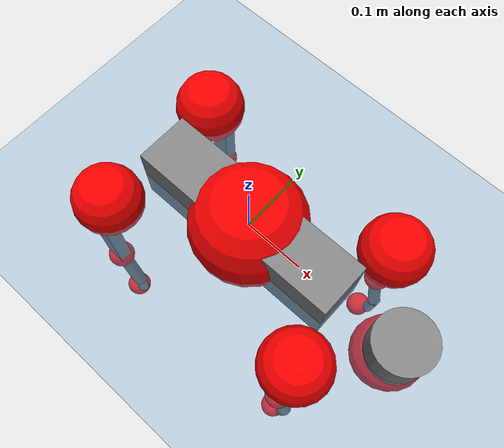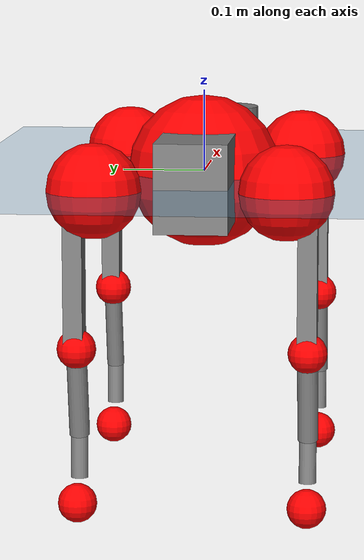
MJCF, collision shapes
<mujoco model="go2">
  <compiler angle="radian" assetdir="assets" balanceinertia="true" inertiafromgeom="false"/>

  <option timestep="0.005" density="1.2" viscosity="2e-05"/>

  <size nkey="1"/>

  <visual>
    <quality shadowsize="8192"/>
    <map shadowclip="0.5"/>
  </visual>

  <default>
    <default class="/">
      <geom contype="0" conaffinity="0" group="1" solref="-1000 -80"/>
      <site size="0.01 0.005 0.005" group="5"/>
      <general forcelimited="true" biastype="affine" gainprm="20" biasprm="0 -20 -0.5"/>
      <default class="go2">
        <joint armature="0.01" damping="0.01" frictionloss="0.2"/>
        <geom condim="1" margin="0.001"/>
        <default class="visual">
          <geom type="mesh" group="2"/>
        </default>
        <default class="collision">
          <geom group="3"/>
          <default class="foot">
            <geom size="0.022 0 0" condim="6" priority="1" friction="0.8 0.02 0.01" solimp="0.015 1 0.022"/>
          </default>
        </default>
        <default class="reward_collision_sphere">
          <geom group="5" rgba="1 0 0 1"/>
        </default>
      </default>
    </default>
  </default>

  <asset>
    <texture type="skybox" colorspace="auto" name="//unnamed_texture_0" builtin="gradient" rgb1="0.95 0.95 0.95" rgb2="0.95 0.95 0.95" width="100" height="600"/>
    <texture type="2d" colorspace="auto" name="texplane" builtin="checker" rgb1="0.345 0.575 0.748" rgb2="0.345 0.575 0.748" markrgb="1 1 1" width="512" height="512"/>
    <material name="MatPlane" class="/" texture="texplane" texuniform="true" texrepeat="2 2" specular="0.9"/>
    <material name="metal" class="/" rgba="0.9 0.95 0.95 1"/>
    <material name="black" class="/" rgba="0 0 0 1"/>
    <material name="white" class="/"/>
    <material name="gray" class="/" rgba="0.671705 0.692426 0.77427 1"/>
    <mesh name="base_0" class="/" file="base_0.obj"/>
    <mesh name="base_1" class="/" file="base_1.obj"/>
    <mesh name="base_2" class="/" file="base_2.obj"/>
    <mesh name="base_3" class="/" file="base_3.obj"/>
    <mesh name="base_4" class="/" file="base_4.obj"/>
    <mesh name="hip_0" class="/" file="hip_0.obj"/>
    <mesh name="hip_1" class="/" file="hip_1.obj"/>
    <mesh name="thigh_0" class="/" file="thigh_0.obj"/>
    <mesh name="thigh_1" class="/" file="thigh_1.obj"/>
    <mesh name="thigh_mirror_0" class="/" file="thigh_mirror_0.obj"/>
    <mesh name="thigh_mirror_1" class="/" file="thigh_mirror_1.obj"/>
    <mesh name="calf_0" class="/" file="calf_0.obj"/>
    <mesh name="calf_1" class="/" file="calf_1.obj"/>
    <mesh name="calf_mirror_0" class="/" file="calf_mirror_0.obj"/>
    <mesh name="calf_mirror_1" class="/" file="calf_mirror_1.obj"/>
    <mesh name="foot" class="/" file="foot.obj"/>
  </asset>

  <worldbody>
    <geom name="floor" class="/" size="100 100 0.125" type="plane" group="0" material="MatPlane"/>
    <light name="toplight_shadow" class="/" pos="0 0 5" dir="0.0990148 0.0990148 -0.990148" type="directional" ambient="0.04 0.04 0.04" diffuse="0.55 0.55 0.55" specular="0.12 0.12 0.12"/>
    <light name="toplight_fill" class="/" pos="0 0 5" dir="0.0990148 0.0990148 -0.990148" type="directional" castshadow="false" ambient="0.04 0.04 0.04" diffuse="0.3 0.3 0.3" specular="0.08 0.08 0.08"/>
    <body name="trunk" childclass="go2" pos="3.33836e-06 0.000162169 2.35303e-05" quat="1 -7.98156e-06 3.98334e-06 3.22683e-06">
      <inertial pos="0.0199353 -0.000180628 -0.00486126" quat="-0.00452236 0.709689 -0.00677977 0.704468" mass="5.73426" diaginertia="0.0933854 0.0832095 0.0127026"/>
      <joint name="//unnamed_joint_0" type="free" armature="0" damping="0" frictionloss="0"/>
      <geom name="//unnamed_geom_1" class="visual" material="black" mesh="base_0"/>
      <geom name="//unnamed_geom_2" class="visual" material="black" mesh="base_1"/>
      <geom name="//unnamed_geom_3" class="visual" material="black" mesh="base_2"/>
      <geom name="//unnamed_geom_4" class="visual" material="white" mesh="base_3"/>
      <geom name="//unnamed_geom_5" class="visual" material="gray" mesh="base_4"/>
      <geom name="trunk_1" class="collision" size="0.176373 0.0438354 0.0534464" type="box"/>
      <geom name="trunk_2" class="collision" size="0.0468828 0.0421945" pos="0.276762 0 0.00877234" type="cylinder"/>
      <geom name="trunk_3" class="collision" size="0.0440699" pos="0.284531 0 -0.0526341"/>
      <geom name="//unnamed_geom_9" class="reward_collision_sphere" size="0.0937657"/>
      <geom name="//unnamed_geom_10" class="reward_collision_sphere" size="0.0562594" pos="0.271907 0 -0.0394755"/>
      <site name="imu" pos="-0.0263058 -0.00466657 0.037968" size="0.00937657"/>
      <camera name="track" pos="0 -1.92928 0" quat="0.707107 0.707107 0 0" mode="trackcom"/>
      <camera name="ego_camera" pos="0.302982 0 0.0394755" quat="-0.5 -0.5 0.5 0.5"/>
      <body name="FL_hip" pos="0.186489 0.0466448 0.00243966" quat="1 -2.93574e-05 7.48731e-07 -6.39335e-05">
        <inertial pos="-0.00560857 0.00202878 -0.00100719" quat="0.496652 0.499138 0.50626 0.497895" mass="0.561259" diaginertia="0.000762852 0.000502322 0.000251115"/>
        <joint name="FL_hip_joint" pos="0 0 0" axis="0.999983 -0.00451722 -0.00381184" stiffness="0.00759886" range="-1.01558 1.03036" armature="0.0095483" damping="0.00318026" frictionloss="0.181401"/>
        <geom name="//unnamed_geom_11" class="visual" material="metal" mesh="hip_0"/>
        <geom name="//unnamed_geom_12" class="visual" material="gray" mesh="hip_1"/>
        <geom name="//unnamed_geom_13" class="collision" size="0.0431322 0.0187531" pos="0 0.0771713 0" quat="0.707107 0.707107 0 0" type="cylinder"/>
        <geom name="//unnamed_geom_14" class="reward_collision_sphere" size="0.0562594" pos="0 0.0675249 0"/>
        <body name="FL_thigh" pos="-0.0012989 0.0934119 0.00189153" quat="1 0.000287926 -3.66359e-05 -8.89205e-05">
          <inertial pos="-0.00447959 -0.022171 -0.0280144" quat="0.829294 0.0869254 -0.019951 0.551649" mass="0.949681" diaginertia="0.0051246 0.00486628 0.000455664"/>
          <joint name="FL_thigh_joint" pos="0 0 0" axis="0.00242691 0.999987 0.00452666" stiffness="0.00488011" range="-1.58803 3.51261" armature="0.00941992" damping="0.0108988" frictionloss="0.182143"/>
          <geom name="//unnamed_geom_15" class="visual" material="metal" mesh="thigh_0"/>
          <geom name="//unnamed_geom_16" class="visual" material="gray" mesh="thigh_1"/>
          <geom name="//unnamed_geom_17" class="collision" size="0.0998604 0.0114863 0.0159402" pos="0 0 -0.0934254" quat="0.707107 0 0.707107 0" type="box"/>
          <body name="FL_calf" pos="-0.000928673 -0.00178031 -0.186304" quat="1 0.000338931 -0.00027497 -0.00018921">
            <inertial pos="0.00551142 -0.000498595 -0.125064" quat="0.710731 0.00165363 -0.00435374 0.703449" mass="0.198221" diaginertia="0.0012918 0.00124013 2.7206e-05"/>
            <joint name="FL_calf_joint" pos="0 0 0" axis="-0.00657288 0.999969 -0.0042896" stiffness="0.00235186" range="-2.75128 -0.833082" armature="0.00980043" damping="0.00034776" frictionloss="0.187173"/>
            <geom name="//unnamed_geom_18" class="visual" material="gray" mesh="calf_0"/>
            <geom name="//unnamed_geom_19" class="visual" material="black" mesh="calf_1"/>
            <geom name="FL_calf0" class="collision" size="0.0112519 0.0562594" pos="0.00776876 0 -0.0526341" quat="0.994493 0 -0.104807 0" type="cylinder"/>
            <geom name="//unnamed_geom_21" class="collision" size="0.0103142 0.0304738" pos="0.0194219 0 -0.129831" quat="0.999688 0 0.0249974 0" type="cylinder"/>
            <geom name="//unnamed_geom_22" class="visual" pos="0 0 -0.186851" quat="1 0 0 0" material="black" mesh="foot"/>
            <geom name="FL_foot" class="foot" size="0.0184116" pos="-0.00194219 0 -0.186851"/>
            <geom name="//unnamed_geom_24" class="reward_collision_sphere" size="0.0234414"/>
            <geom name="//unnamed_geom_25" class="reward_collision_sphere" size="0.0234414" pos="-0.00194219 0 -0.186851"/>
            <site name="FL_foot" class="foot" pos="-0.00194219 0 -0.186851" size="0.00937657"/>
          </body>
        </body>
      </body>
      <body name="FR_hip" pos="0.188622 -0.0436094 -0.000491315" quat="1 -8.94274e-05 0.000121999 0.000130103">
        <inertial pos="-0.00488703 -0.00121644 -0.00056801" quat="0.497078 0.505633 0.499935 0.497307" mass="0.555191" diaginertia="0.000764874 0.000487275 0.000249143"/>
        <joint name="FR_hip_joint" pos="0 0 0" axis="0.999988 0.00407249 -0.00285432" stiffness="0.00687651" range="-1.04975 1.05413" armature="0.00928858" damping="0.0177266" frictionloss="0.183006"/>
        <geom name="//unnamed_geom_26" class="visual" pos="0 7.61449e-10 3.26601e-08" quat="4.63268e-05 1 0 0" material="metal" mesh="hip_0"/>
        <geom name="//unnamed_geom_27" class="visual" pos="0 1.2344e-09 -8.0781e-08" quat="4.63268e-05 1 0 0" material="gray" mesh="hip_1"/>
        <geom name="//unnamed_geom_28" class="collision" size="0.0431322 0.0187531" pos="0 -0.0771713 0" quat="0.707107 0.707107 0 0" type="cylinder"/>
        <geom name="//unnamed_geom_29" class="reward_collision_sphere" size="0.0562594" pos="0 -0.0675249 0"/>
        <body name="FR_thigh" pos="0.00182468 -0.0906577 0.00130832" quat="1 -0.000186576 -0.000325717 -0.000322872">
          <inertial pos="-0.0033064 0.0202253 -0.0283551" quat="0.55483 -0.021559 0.0831923 0.827513" mass="0.945971" diaginertia="0.00514446 0.00488804 0.000461338"/>
          <joint name="FR_thigh_joint" pos="0 0 0" axis="-0.000629103 -1 0.000437933" range="-3.51432 1.56894" armature="0.00945955" damping="0.0144381" frictionloss="0.187525"/>
          <geom name="//unnamed_geom_30" class="visual" material="metal" mesh="thigh_mirror_0"/>
          <geom name="//unnamed_geom_31" class="visual" material="gray" mesh="thigh_mirror_1"/>
          <geom name="//unnamed_geom_32" class="collision" size="0.0998604 0.0114863 0.0159402" pos="0 0 -0.0934254" quat="0.707107 0 0.707107 0" type="box"/>
          <body name="FR_calf" pos="-0.000920035 8.70287e-05 -0.185984" quat="1 -0.000169697 7.73802e-05 -0.000119857">
            <inertial pos="0.00521122 0.00063401 -0.125022" quat="0.701495 -0.00309804 0.00434202 0.712654" mass="0.199126" diaginertia="0.00129379 0.00122126 2.75396e-05"/>
            <joint name="FR_calf_joint" pos="0 0 0" axis="-0.00776003 -0.999969 -0.00109327" stiffness="0.00222702" range="0.846541 2.71371" armature="0.00981629" damping="0.0153392" frictionloss="0.184372"/>
            <geom name="//unnamed_geom_33" class="visual" material="gray" mesh="calf_mirror_0"/>
            <geom name="//unnamed_geom_34" class="visual" material="black" mesh="calf_mirror_1"/>
            <geom name="FR_calf0" class="collision" size="0.0121895 0.0562594" pos="0.00971095 0 -0.0526341" quat="0.995004 0 -0.0998334 0" type="cylinder"/>
            <geom name="//unnamed_geom_36" class="collision" size="0.0103142 0.0304738" pos="0.0194219 0 -0.129831" quat="0.999688 0 0.0249974 0" type="cylinder"/>
            <geom name="//unnamed_geom_37" class="visual" pos="0 0 -0.186851" quat="1 0 0 0" material="black" mesh="foot"/>
            <geom name="FR_foot" class="foot" size="0.0221942" pos="-0.00194219 0 -0.186851"/>
            <geom name="//unnamed_geom_39" class="reward_collision_sphere" size="0.0234414"/>
            <geom name="//unnamed_geom_40" class="reward_collision_sphere" size="0.0234414" pos="-0.00194219 0 -0.186851"/>
            <site name="FR_foot" class="foot" pos="-0.00194219 0 -0.186851" size="0.00937657"/>
          </body>
        </body>
      </body>
      <body name="RL_hip" pos="-0.188193 0.0444574 -0.000864796" quat="1 1.22564e-05 -9.2678e-06 -0.000121901">
        <inertial pos="0.00507101 0.00218427 -0.000790046" quat="0.505455 0.497946 0.497016 0.499539" mass="0.552681" diaginertia="0.000754382 0.00049255 0.000246446"/>
        <joint name="RL_hip_joint" pos="0 0 0" axis="-0.999875 -0.0150449 -0.00494796" stiffness="0.00330521" range="-1.0431 1.06422" armature="0.00931957" damping="0.0122968" frictionloss="0.191949"/>
        <geom name="//unnamed_geom_41" class="visual" pos="-8.17677e-10 0 -1.60283e-07" quat="4.63268e-05 0 1 0" material="metal" mesh="hip_0"/>
        <geom name="//unnamed_geom_42" class="visual" pos="-1.32555e-09 0 -1.42149e-07" quat="4.63268e-05 0 1 0" material="gray" mesh="hip_1"/>
        <geom name="//unnamed_geom_43" class="collision" size="0.0431322 0.0187531" pos="0 0.0771713 0" quat="0.707107 0.707107 0 0" type="cylinder"/>
        <geom name="//unnamed_geom_44" class="reward_collision_sphere" size="0.0562594" pos="0 0.0675249 0"/>
        <body name="RL_thigh" pos="0.00058654 0.0916036 -0.00126085" quat="1 0.000159156 8.81906e-07 0.000183836">
          <inertial pos="-0.00376435 -0.0215043 -0.0296943" quat="0.828527 0.0884209 -0.0177211 0.55264" mass="0.961351" diaginertia="0.00509332 0.00479541 0.000452986"/>
          <joint name="RL_thigh_joint" pos="0 0 0" axis="0.00597784 0.999982 0.0007893" range="-0.518759 4.52085" armature="0.00964936" damping="0.00729365" frictionloss="0.187337"/>
          <geom name="//unnamed_geom_45" class="visual" material="metal" mesh="thigh_0"/>
          <geom name="//unnamed_geom_46" class="visual" material="gray" mesh="thigh_1"/>
          <geom name="//unnamed_geom_47" class="collision" size="0.0998604 0.0114863 0.0159402" pos="0 0 -0.0934254" quat="0.707107 0 0.707107 0" type="box"/>
          <body name="RL_calf" pos="0.000623226 -0.00216697 -0.187364" quat="1 7.25649e-06 3.88372e-06 4.51081e-05">
            <inertial pos="0.00616563 -0.000345696 -0.124417" quat="0.711475 0.000646436 -0.00394791 0.7027" mass="0.194708" diaginertia="0.00128023 0.00121372 2.73299e-05"/>
            <joint name="RL_calf_joint" pos="0 0 0" axis="0.0070932 0.999975 -0.000314194" stiffness="0.000178827" range="-2.6946 -0.831532" armature="0.00925931" damping="0.00341165" frictionloss="0.186414"/>
            <geom name="//unnamed_geom_48" class="visual" material="gray" mesh="calf_0"/>
            <geom name="//unnamed_geom_49" class="visual" material="black" mesh="calf_1"/>
            <geom name="RL_calf0" class="collision" size="0.0121895 0.0562594" pos="0.00971095 0 -0.0526341" quat="0.995004 0 -0.0998334 0" type="cylinder"/>
            <geom name="//unnamed_geom_51" class="collision" size="0.0103142 0.0304738" pos="0.0194219 0 -0.129831" quat="0.999688 0 0.0249974 0" type="cylinder"/>
            <geom name="//unnamed_geom_52" class="visual" pos="0 0 -0.186851" quat="1 0 0 0" material="black" mesh="foot"/>
            <geom name="RL_foot" class="foot" size="0.0173073" pos="-0.00194219 0 -0.186851"/>
            <geom name="//unnamed_geom_54" class="reward_collision_sphere" size="0.0234414"/>
            <geom name="//unnamed_geom_55" class="reward_collision_sphere" size="0.0234414" pos="-0.00194219 0 -0.186851"/>
            <site name="RL_foot" class="foot" pos="-0.00194219 0 -0.186851" size="0.00937657"/>
          </body>
        </body>
      </body>
      <body name="RR_hip" pos="-0.187061 -0.0457969 -0.000494459" quat="1 -0.000108753 -1.20818e-05 -0.000119561">
        <inertial pos="0.00550435 -0.00156746 0.000812693" quat="0.498433 0.496985 0.498291 0.506238" mass="0.550235" diaginertia="0.000751974 0.000488383 0.000249192"/>
        <joint name="RR_hip_joint" pos="0 0 0" axis="-0.99999 -0.00160495 -0.00423904" range="-1.05376 1.03238" armature="0.0094318" damping="0.00674442" frictionloss="0.189285"/>
        <geom name="//unnamed_geom_56" class="visual" pos="8.17453e-10 7.61449e-10 -1.92944e-07" quat="2.14617e-09 4.63268e-05 4.63268e-05 -1" material="metal" mesh="hip_0"/>
        <geom name="//unnamed_geom_57" class="visual" pos="1.3261e-09 1.2344e-09 -6.13676e-08" quat="2.14617e-09 4.63268e-05 4.63268e-05 -1" material="gray" mesh="hip_1"/>
        <geom name="//unnamed_geom_58" class="collision" size="0.0431322 0.0187531" pos="0 -0.0771713 0" quat="0.707107 0.707107 0 0" type="cylinder"/>
        <geom name="//unnamed_geom_59" class="reward_collision_sphere" size="0.0562594" pos="0 -0.0675249 0"/>
        <body name="RR_thigh" pos="0.000523529 -0.0927116 -0.00133457" quat="1 0.000100884 0.000165222 1.87365e-05">
          <inertial pos="-0.00355821 0.0208506 -0.0295807" quat="0.551468 -0.0188065 0.0862354 0.829514" mass="0.95631" diaginertia="0.00519288 0.00491826 0.000461866"/>
          <joint name="RR_thigh_joint" pos="0 0 0" axis="-0.00340106 -0.999987 0.00375574" stiffness="0.00286264" range="-4.52921 0.50567" armature="0.0095354" damping="0.0128526" frictionloss="0.192363"/>
          <geom name="//unnamed_geom_60" class="visual" material="metal" mesh="thigh_mirror_0"/>
          <geom name="//unnamed_geom_61" class="visual" material="gray" mesh="thigh_mirror_1"/>
          <geom name="//unnamed_geom_62" class="collision" size="0.0998604 0.0114863 0.0159402" pos="0 0 -0.0934254" quat="0.707107 0 0.707107 0" type="box"/>
          <body name="RR_calf" pos="-0.00136065 -0.000570197 -0.187969" quat="1 -0.000317758 0.000368078 -0.000216232">
            <inertial pos="0.00760547 0.000644048 -0.124558" quat="0.70559 -0.00495562 0.000352796 0.708603" mass="0.200016" diaginertia="0.00130276 0.00122687 2.7824e-05"/>
            <joint name="RR_calf_joint" pos="0 0 0" axis="-0.00549822 -0.999983 0.00197684" range="0.839367 2.74515" armature="0.00903052" damping="0.0079222" frictionloss="0.189509"/>
            <geom name="//unnamed_geom_63" class="visual" material="gray" mesh="calf_mirror_0"/>
            <geom name="//unnamed_geom_64" class="visual" material="black" mesh="calf_mirror_1"/>
            <geom name="RR_calf0" class="collision" size="0.0121895 0.0562594" pos="0.00971095 0 -0.0526341" quat="0.995004 0 -0.0998334 0" type="cylinder"/>
            <geom name="//unnamed_geom_66" class="collision" size="0.0103142 0.0304738" pos="0.0194219 0 -0.129831" quat="0.999688 0 0.0249974 0" type="cylinder"/>
            <geom name="//unnamed_geom_67" class="visual" pos="0 0 -0.186851" quat="1 0 0 0" material="black" mesh="foot"/>
            <geom name="RR_foot" class="foot" size="0.0211182" pos="-0.00194219 0 -0.186851"/>
            <geom name="//unnamed_geom_69" class="reward_collision_sphere" size="0.0234414"/>
            <geom name="//unnamed_geom_70" class="reward_collision_sphere" size="0.0234414" pos="-0.00194219 0 -0.186851"/>
            <site name="RR_foot" class="foot" pos="-0.00194219 0 -0.186851" size="0.00937657"/>
          </body>
        </body>
      </body>
    </body>
  </worldbody>

  <contact>
    <pair class="/" geom1="floor" geom2="FL_foot" name="//unnamed_contact_0"/>
    <pair class="/" geom1="floor" geom2="FR_foot" name="//unnamed_contact_1"/>
    <pair class="/" geom1="floor" geom2="RL_foot" name="//unnamed_contact_2"/>
    <pair class="/" geom1="floor" geom2="RR_foot" name="//unnamed_contact_3"/>
  </contact>

  <actuator>
    <general name="FL_hip" class="/" joint="FL_hip_joint" forcerange="-23.4923 23.4923" gainprm="19.3325" biasprm="0 -19.3325 -0.466024"/>
    <general name="FL_thigh" class="/" joint="FL_thigh_joint" forcerange="-22.9156 22.9156" gainprm="19.3325" biasprm="0 -19.3325 -0.466024"/>
    <general name="FL_calf" class="/" joint="FL_calf_joint" forcerange="-42.4913 42.4913" gainprm="19.3325" biasprm="0 -19.3325 -0.466024"/>
    <general name="FR_hip" class="/" joint="FR_hip_joint" forcerange="-23.0239 23.0239" gainprm="19.3325" biasprm="0 -19.3325 -0.466024"/>
    <general name="FR_thigh" class="/" joint="FR_thigh_joint" forcerange="-23.0524 23.0524" gainprm="19.3325" biasprm="0 -19.3325 -0.466024"/>
    <general name="FR_calf" class="/" joint="FR_calf_joint" forcerange="-41.4536 41.4536" gainprm="19.3325" biasprm="0 -19.3325 -0.466024"/>
    <general name="RL_hip" class="/" joint="RL_hip_joint" forcerange="-22.0026 22.0026" gainprm="19.3325" biasprm="0 -19.3325 -0.466024"/>
    <general name="RL_thigh" class="/" joint="RL_thigh_joint" forcerange="-22.6756 22.6756" gainprm="19.3325" biasprm="0 -19.3325 -0.466024"/>
    <general name="RL_calf" class="/" joint="RL_calf_joint" forcerange="-44.083 44.083" gainprm="19.3325" biasprm="0 -19.3325 -0.466024"/>
    <general name="RR_hip" class="/" joint="RR_hip_joint" forcerange="-21.1298 21.1298" gainprm="19.3325" biasprm="0 -19.3325 -0.466024"/>
    <general name="RR_thigh" class="/" joint="RR_thigh_joint" forcerange="-21.8785 21.8785" gainprm="19.3325" biasprm="0 -19.3325 -0.466024"/>
    <general name="RR_calf" class="/" joint="RR_calf_joint" forcerange="-42.9266 42.9266" gainprm="19.3325" biasprm="0 -19.3325 -0.466024"/>
  </actuator>

  <sensor>
    <gyro site="imu" name="imu_angular_velocity"/>
    <velocimeter site="imu" name="imu_linear_velocity"/>
    <framelinvel objtype="site" objname="FL_foot" name="FL_foot_global_linear_velocity"/>
    <framelinvel objtype="site" objname="FR_foot" name="FR_foot_global_linear_velocity"/>
    <framelinvel objtype="site" objname="RL_foot" name="RL_foot_global_linear_velocity"/>
    <framelinvel objtype="site" objname="RR_foot" name="RR_foot_global_linear_velocity"/>
  </sensor>

  <keyframe>
    <key name="home" qpos="0 0 0.325 1 0 0 0 0.1 0.8 -1.5 -0.1 -0.8 1.5 -0.1 0.8 -1.5 0.1 -0.8 1.5"/>
  </keyframe>
</mujoco>
